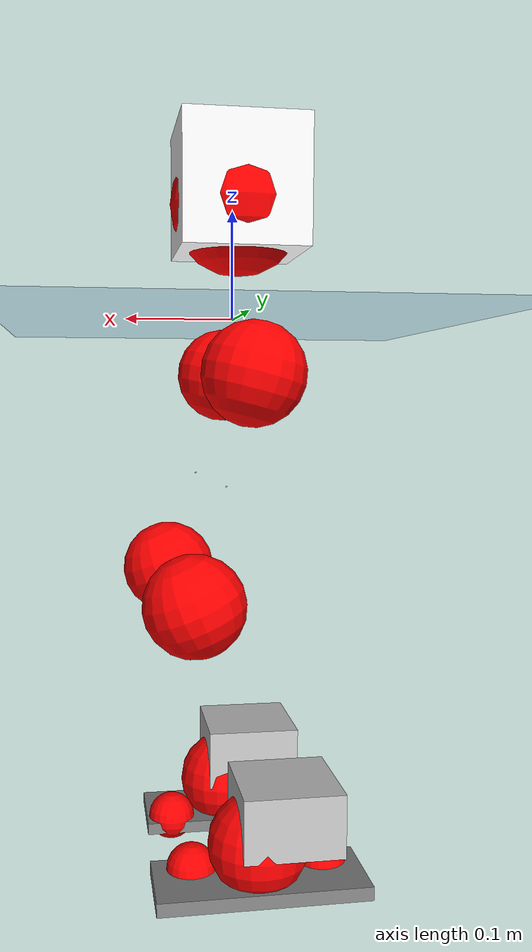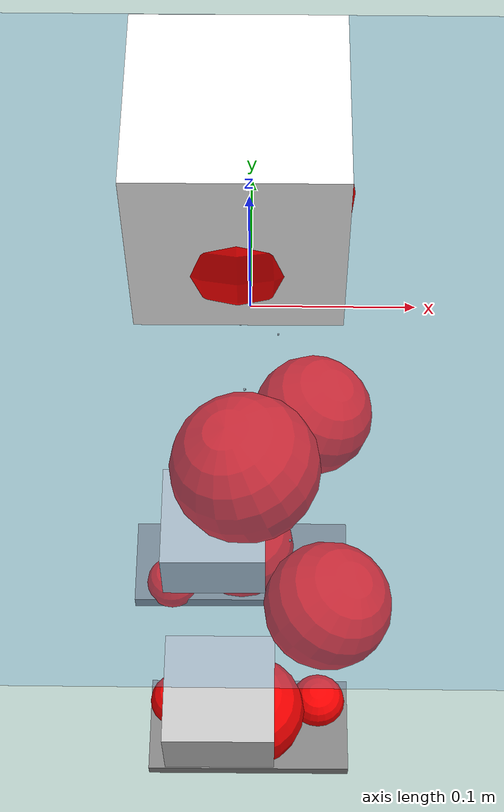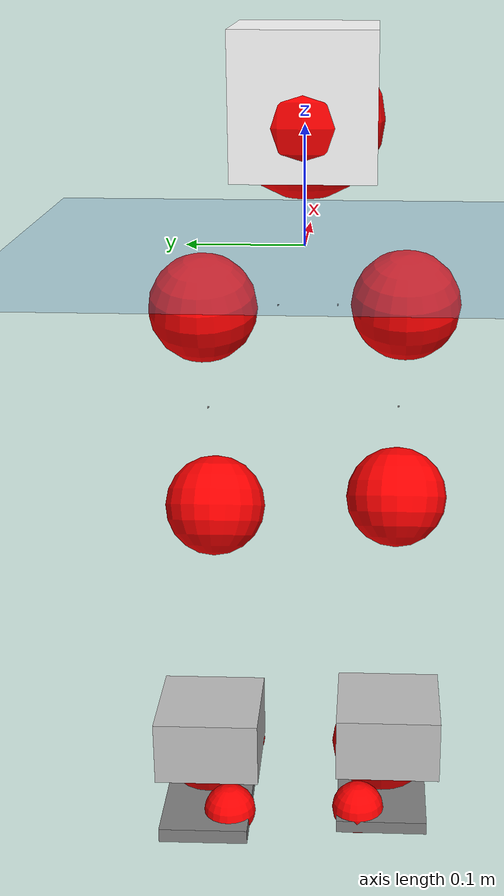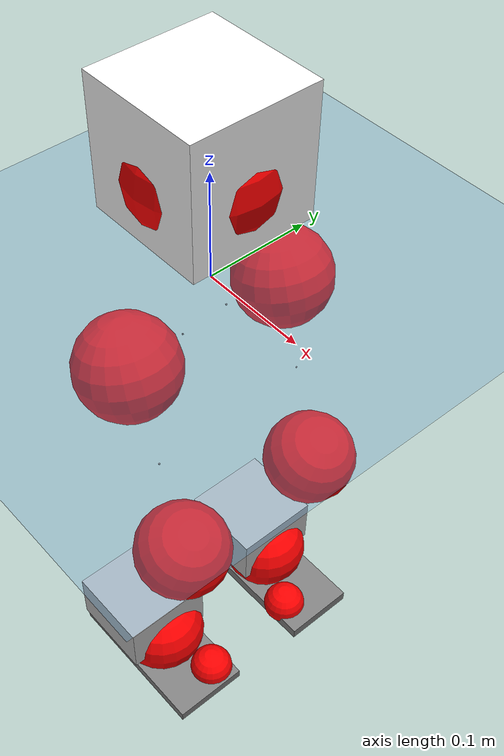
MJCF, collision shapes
<mujoco model="pi_12dof_release_v1">
  <compiler angle="radian" assetdir="assets" balanceinertia="true" inertiafromgeom="false"/>

  <option timestep="0.005" density="1.2" viscosity="2e-05"/>

  <size nkey="1"/>

  <visual>
    <quality shadowsize="8192"/>
    <map shadowclip="0.5"/>
  </visual>

  <default>
    <default class="/">
      <joint armature="0.01" damping="0.01" frictionloss="0.01"/>
      <geom contype="0" conaffinity="0" group="1" solref="-1000 -80"/>
      <site size="0.01 0.005 0.005" group="5"/>
      <general forcelimited="true" biastype="affine" gainprm="20" biasprm="0 -20 -0.5"/>
      <default class="foot">
        <geom size="0.0845 0.036 0.005" type="box" condim="6" group="4" priority="1" friction="0.9 0.2 0.2" solimp="0.015 1 0.005"/>
      </default>
      <default class="reward_collision_sphere">
        <geom group="5" rgba="1 0 0 1"/>
      </default>
    </default>
  </default>

  <asset>
    <texture type="skybox" colorspace="auto" name="//unnamed_texture_0" builtin="gradient" rgb1="0.95 0.95 0.95" rgb2="0.95 0.95 0.95" width="100" height="600"/>
    <texture type="2d" colorspace="auto" name="texplane" builtin="checker" rgb1="0.345 0.575 0.748" rgb2="0.345 0.575 0.748" markrgb="1 1 1" width="512" height="512"/>
    <material name="MatPlane" class="/" texture="texplane" texuniform="true" texrepeat="2 2" specular="0.9"/>
    <mesh name="baselink_1" class="/" file="baselink_1.STL"/>
    <mesh name="r_hip_pitch_link" class="/" file="r_hip_pitch_link.STL"/>
    <mesh name="r_hip_roll_link" class="/" file="r_hip_roll_link.STL"/>
    <mesh name="r_thigh_link" class="/" file="r_thigh_link.STL"/>
    <mesh name="r_calf_link" class="/" file="r_calf_link.STL"/>
    <mesh name="r_ankle_pitch_link" class="/" file="r_ankle_pitch_link.STL"/>
    <mesh name="r_ankle_roll_link" class="/" file="r_ankle_roll_link.STL"/>
    <mesh name="l_hip_pitch_link" class="/" file="l_hip_pitch_link.STL"/>
    <mesh name="l_hip_roll_link" class="/" file="l_hip_roll_link.STL"/>
    <mesh name="l_thigh_link" class="/" file="l_thigh_link.STL"/>
    <mesh name="l_calf_link" class="/" file="l_calf_link.STL"/>
    <mesh name="l_ankle_pitch_link" class="/" file="l_ankle_pitch_link.STL"/>
    <mesh name="l_ankle_roll_link" class="/" file="l_ankle_roll_link.STL"/>
  </asset>

  <worldbody>
    <geom name="floor" class="/" size="100 100 0.125" type="plane" group="0" material="MatPlane"/>
    <light name="toplight_shadow" class="/" pos="0 0 5" dir="0.0990148 0.0990148 -0.990148" type="directional" ambient="0.04 0.04 0.04" diffuse="0.55 0.55 0.55" specular="0.12 0.12 0.12"/>
    <light name="toplight_fill" class="/" pos="0 0 5" dir="0.0990148 0.0990148 -0.990148" type="directional" castshadow="false" ambient="0.04 0.04 0.04" diffuse="0.3 0.3 0.3" specular="0.08 0.08 0.08"/>
    <body name="trunk" pos="-0.00535368 -0.00126988 -0.00106867" quat="0.999998 -0.000525396 -0.00169516 0.000942648">
      <inertial pos="0.00689994 0.000980854 0.0588611" quat="0.690106 0.0192905 0.0126646 0.72334" mass="3.7101" diaginertia="0.006161 0.012908 0.0341132"/>
      <joint name="//unnamed_joint_0" type="free"/>
      <geom name="//unnamed_geom_1" class="/" type="mesh" density="0" rgba="1 1 1 1" mesh="baselink_1"/>
      <geom name="//unnamed_geom_2" class="/" size="0.0581578 0.0581578 0.0581578" pos="0 0 0.120813" type="box" rgba="1 1 1 1"/>
      <geom name="//unnamed_geom_3" class="reward_collision_sphere" size="0.0639736" pos="0 0 0.105712"/>
      <site name="imu" class="/" pos="-0.00750433 0.00216663 -0.0180839" size="0.0116316"/>
      <camera name="track" class="/" pos="0 -2.14285 0" quat="0.707107 0.707107 0 0" mode="trackcom"/>
      <camera name="ego_camera" class="/" pos="0.0680908 0 0.27183" quat="-0.5 -0.5 0.5 0.5"/>
      <body name="r_hip_pitch_link" pos="0.00177038 -0.0265424 -0.0483258" quat="0.992262 3.32806e-05 -0.124165 0.000243796">
        <inertial pos="0.00361706 -0.0580061 -0.00153741" quat="-0.0183221 0.704819 -0.019609 0.708879" mass="0.592502" diaginertia="6.43584e-05 0.000144013 0.000651894"/>
        <joint name="r_hip_pitch_joint" class="/" pos="0 0 0" axis="0.000898937 -0.999989 -0.00469967" range="-1.76597 1.29175" armature="0.010356" damping="0" frictionloss="0.0107737"/>
        <geom name="//unnamed_geom_4" class="/" type="mesh" density="0" rgba="0.75294 0.75294 0.75294 1" mesh="r_hip_pitch_link"/>
        <geom name="//unnamed_geom_5" class="/" size="0.000581578 0.000581578 0.000581578" type="box" rgba="0.75294 0.75294 0.75294 1"/>
        <body name="r_hip_roll_link" pos="0.00105398 -0.0575746 2.85594e-05" quat="0.999999 -0.00099065 -0.000762316 0.000619804">
          <inertial pos="-0.00267782 0.000760128 -0.0880497" quat="0.706301 -0.0789333 -0.0827727 0.698611" mass="0.613798" diaginertia="0.000212026 0.000406135 0.000952451"/>
          <joint name="r_hip_roll_joint" class="/" pos="0 0 0" axis="-0.999972 0.0057547 -0.00487598" stiffness="0.00737531" range="-0.165998 0.522078" armature="0.0106877" damping="0.0274437" frictionloss="0.010146"/>
          <geom name="//unnamed_geom_6" class="/" type="mesh" density="0" rgba="0.75294 0.75294 0.75294 1" mesh="r_hip_roll_link"/>
          <geom name="//unnamed_geom_7" class="/" size="0.000581578 0.000581578 0.000581578" type="box" rgba="0.75294 0.75294 0.75294 1"/>
          <geom name="//unnamed_geom_8" class="reward_collision_sphere" size="0.0465262"/>
          <body name="r_thigh_link" pos="0.00307319 0.00402948 -0.104021" quat="1 2.81971e-05 3.33905e-05 -0.000132229">
            <inertial pos="0.00244014 0.00217173 -0.0725484" quat="0.737238 0.675578 -0.00162378 0.00848304" mass="0.176029" diaginertia="7.15755e-05 0.000123438 0.000434712"/>
            <joint name="r_thigh_joint" class="/" pos="0 0 0" axis="0.000629679 -0.00426188 -0.999991" range="-0.26009 0.59279" armature="0.0115646" damping="0.0158646" frictionloss="0.014789"/>
            <geom name="//unnamed_geom_9" class="/" type="mesh" density="0" rgba="0.75294 0.75294 0.75294 1" mesh="r_thigh_link"/>
            <geom name="//unnamed_geom_10" class="/" size="0.000581578 0.000581578 0.000581578" type="box" rgba="0.75294 0.75294 0.75294 1"/>
            <body name="r_calf_link" pos="0.003245 -0.000298747 -0.102018" quat="0.947374 -2.10396e-05 0.320129 -0.000389343">
              <inertial pos="0.000249164 0.00203062 -0.104358" quat="0.999861 -0.0149412 0.00536808 0.00516209" mass="1.29631" diaginertia="0.00220725 0.00492881 0.0013748"/>
              <joint name="r_calf_joint" class="/" pos="0 0 0" axis="0.0132581 -0.999904 0.00391967" stiffness="0.0149288" range="-1.74779 0.610681" armature="0.0102595" damping="0.0214092" frictionloss="0.0106468"/>
              <geom name="//unnamed_geom_11" class="/" type="mesh" density="0" rgba="0.75294 0.75294 0.75294 1" mesh="r_calf_link"/>
              <geom name="//unnamed_geom_12" class="/" size="0.000581578 0.000581578 0.000581578" type="box" rgba="0.75294 0.75294 0.75294 1"/>
              <geom name="//unnamed_geom_13" class="reward_collision_sphere" size="0.0465262"/>
              <body name="r_ankle_pitch_link" pos="-0.000550493 0.00514794 -0.211224" quat="0.980022 -0.000163406 -0.198889 -1.36681e-05">
                <inertial pos="0.00459343 0.00547998 -0.00198264" quat="0.000943102 0.70821 -0.000230292 0.706002" mass="0.272566" diaginertia="0.000183621 0.000301034 0.000899894"/>
                <joint name="r_ankle_pitch_joint" class="/" pos="0 0 0" axis="-0.00704087 -0.999779 -0.0198075" range="-1.2733 0.51345" armature="0.0122776" damping="0.0105442" frictionloss="0.0117644"/>
                <geom name="//unnamed_geom_14" class="/" type="mesh" density="0" rgba="0.75294 0.75294 0.75294 1" mesh="r_ankle_pitch_link"/>
                <geom name="//unnamed_geom_15" class="/" size="0.0453631 0.0465262 0.0290789" type="box" rgba="0.75294 0.75294 0.75294 1"/>
                <body name="r_ankle_roll_link" pos="0.0698611 0.00509697 -0.00172018" quat="1 0.000380791 0.00012842 0.000168667">
                  <inertial pos="-0.0204388 0.00150726 -0.0223533" quat="0.55127 0.44541 0.432442 0.55741" mass="0.813766" diaginertia="0.00070125 0.0014656 0.00227241"/>
                  <joint name="r_ankle_roll_joint" class="/" pos="0 0 0" axis="-0.999722 0.003853 -0.023274" range="-0.073085 0.177751" armature="0.00945733" damping="0" frictionloss="0.012069"/>
                  <geom name="//unnamed_geom_16" class="/" type="mesh" density="0" rgba="0.75294 0.75294 0.75294 1" mesh="r_ankle_roll_link"/>
                  <geom name="//unnamed_geom_17" class="/" type="mesh" rgba="0.75294 0.75294 0.75294 1" mesh="r_ankle_roll_link"/>
                  <geom name="right_foot" class="foot" size="0.0853101 0.0404933 0.0056753" pos="-0.0463017 0 -0.0664473"/>
                  <geom name="//unnamed_geom_19" class="reward_collision_sphere" size="0.0465262" pos="-0.0453938 0 -0.0302033"/>
                  <geom name="//unnamed_geom_20" class="reward_collision_sphere" size="0.0232631" pos="0.0136182 0.0214285 -0.0604066"/>
                  <geom name="//unnamed_geom_21" class="reward_collision_sphere" size="0.0232631" pos="-0.108945 0.0214285 -0.0604066"/>
                  <site name="right_foot" class="foot" pos="-0.0463017 0 -0.0664473" size="0.0116316"/>
                </body>
              </body>
            </body>
          </body>
        </body>
      </body>
      <body name="l_hip_pitch_link" pos="-0.00163423 0.0238264 -0.0480826" quat="0.992206 -6.73508e-05 -0.124609 -7.74304e-05">
        <inertial pos="0.00258242 0.0537188 0.00110131" quat="-0.0341214 0.686565 0.0214772 0.725949" mass="0.598817" diaginertia="8.33007e-05 0.000153006 0.000778153"/>
        <joint name="l_hip_pitch_joint" class="/" pos="0 0 0" axis="-0.0227016 0.99967 0.0120385" range="-1.20526 1.73981" armature="0.0120443" damping="0.0164451" frictionloss="0.0112777"/>
        <geom name="//unnamed_geom_22" class="/" type="mesh" density="0" rgba="0.75294 0.75294 0.75294 1" mesh="l_hip_pitch_link"/>
        <geom name="//unnamed_geom_23" class="/" size="0.000581578 0.000581578 0.000581578" type="box" rgba="0.75294 0.75294 0.75294 1"/>
        <body name="l_hip_roll_link" pos="-7.39561e-05 0.0637723 -0.00326153" quat="0.999999 0.000403405 0.000351591 0.000870611">
          <inertial pos="-0.00208976 -0.000240731 -0.0894732" quat="0.705842 -0.072296 -0.0748938 0.700679" mass="0.593882" diaginertia="0.000213402 0.000415908 0.00103207"/>
          <joint name="l_hip_roll_joint" class="/" pos="0 0 0" axis="-0.999932 0.00649602 -0.00973633" stiffness="0.0294941" range="-0.544074 0.0752606" armature="0.0107108" damping="0.00640735" frictionloss="0.0104571"/>
          <geom name="//unnamed_geom_24" class="/" type="mesh" density="0" rgba="0.75294 0.75294 0.75294 1" mesh="l_hip_roll_link"/>
          <geom name="//unnamed_geom_25" class="/" size="0.000581578 0.000581578 0.000581578" type="box" rgba="0.75294 0.75294 0.75294 1"/>
          <geom name="//unnamed_geom_26" class="reward_collision_sphere" size="0.0465262"/>
          <body name="l_thigh_link" pos="-0.000689831 0.000835594 -0.100255" quat="0.999999 -0.00057641 0.0010094 -0.000394743">
            <inertial pos="-0.00173791 -0.00625933 -0.0713931" quat="0.675428 0.73742 0.00142349 -0.00260046" mass="0.182574" diaginertia="7.86874e-05 0.000138841 0.000496636"/>
            <joint name="l_thigh_joint" class="/" pos="0 0 0" axis="0.00714865 0.00769014 -0.999945" range="-0.589373 0.27688" armature="0.0120061" damping="0.0196315" frictionloss="0.0119968"/>
            <geom name="//unnamed_geom_27" class="/" type="mesh" density="0" rgba="0.75294 0.75294 0.75294 1" mesh="l_thigh_link"/>
            <geom name="//unnamed_geom_28" class="/" size="0.000581578 0.000581578 0.000581578" type="box" rgba="0.75294 0.75294 0.75294 1"/>
            <body name="l_calf_link" pos="0.000951043 -0.000766822 -0.108871" quat="0.947649 -0.000744649 0.319307 0.00208919">
              <inertial pos="-0.00446097 0.00241937 -0.100596" quat="0.999976 0.00564371 -0.00349986 0.00178457" mass="1.27666" diaginertia="0.0021631 0.00488269 0.00133336"/>
              <joint name="l_calf_joint" class="/" pos="0 0 0" axis="-0.00147363 0.999999 0.000857633" range="-0.694078 1.65051" armature="0.0128916" damping="0.0100317" frictionloss="0.0132453"/>
              <geom name="//unnamed_geom_29" class="/" type="mesh" density="0" rgba="0.75294 0.75294 0.75294 1" mesh="l_calf_link"/>
              <geom name="//unnamed_geom_30" class="/" size="0.000581578 0.000581578 0.000581578" type="box" rgba="0.75294 0.75294 0.75294 1"/>
              <geom name="//unnamed_geom_31" class="reward_collision_sphere" size="0.0465262"/>
              <body name="l_ankle_pitch_link" pos="-0.00157869 4.70594e-05 -0.206477" quat="0.980051 -0.000169213 -0.198745 -0.000145712">
                <inertial pos="0.00201164 -0.00176953 -0.000204139" quat="-0.000252999 0.707186 -7.29414e-05 0.707028" mass="0.287703" diaginertia="0.000184652 0.000311906 0.000934944"/>
                <joint name="l_ankle_pitch_joint" class="/" pos="0 0 0" axis="-0.000628178 1 -0.00032475" range="-0.509811 1.3444" armature="0.0114765" damping="0" frictionloss="0.0124043"/>
                <geom name="//unnamed_geom_32" class="/" type="mesh" density="0" rgba="0.75294 0.75294 0.75294 1" mesh="l_ankle_pitch_link"/>
                <geom name="//unnamed_geom_33" class="/" size="0.0453631 0.0465262 0.0290789" type="box" rgba="0.75294 0.75294 0.75294 1"/>
                <body name="l_ankle_roll_link" pos="0.07008 0.00141883 0.000261415" quat="1 -0.000741613 0.000319477 0.000432663">
                  <inertial pos="-0.0204806 0.00105048 -0.0220272" quat="0.561512 0.429843 0.434608 0.557724" mass="0.809036" diaginertia="0.00071932 0.00146723 0.00217493"/>
                  <joint name="l_ankle_roll_joint" class="/" pos="0 0 0" axis="-0.999748 0.00398545 -0.0220978" stiffness="0.0150319" range="-0.140306 0.178123" armature="0.0103529" damping="0" frictionloss="0.0106759"/>
                  <geom name="//unnamed_geom_34" class="/" type="mesh" density="0" rgba="0.75294 0.75294 0.75294 1" mesh="l_ankle_roll_link"/>
                  <geom name="//unnamed_geom_35" class="/" type="mesh" rgba="0.75294 0.75294 0.75294 1" mesh="l_ankle_roll_link"/>
                  <geom name="left_foot" class="foot" size="0.096647 0.0394417 0.00641138" pos="-0.0463017 0 -0.0664473"/>
                  <geom name="//unnamed_geom_37" class="reward_collision_sphere" size="0.0465262" pos="-0.0453938 0 -0.0302033"/>
                  <geom name="//unnamed_geom_38" class="reward_collision_sphere" size="0.0232631" pos="0.0136182 -0.0214285 -0.0604066"/>
                  <geom name="//unnamed_geom_39" class="reward_collision_sphere" size="0.0232631" pos="-0.108945 -0.0214285 -0.0604066"/>
                  <site name="left_foot" class="foot" pos="-0.0463017 0 -0.0664473" size="0.0116316"/>
                </body>
              </body>
            </body>
          </body>
        </body>
      </body>
    </body>
  </worldbody>

  <contact>
    <pair class="/" geom1="floor" geom2="right_foot" name="//unnamed_contact_1"/>
    <pair class="/" geom1="floor" geom2="left_foot" name="//unnamed_contact_0"/>
  </contact>

  <actuator>
    <general name="r_hip_pitch_joint" class="/" joint="r_hip_pitch_joint" forcerange="-24.7679 24.7679" gainprm="23.5937" biasprm="0 -23.5937 -0.607163"/>
    <general name="r_hip_roll_joint" class="/" joint="r_hip_roll_joint" forcerange="-24.36 24.36" gainprm="23.5937" biasprm="0 -23.5937 -0.607163"/>
    <general name="r_thigh_joint" class="/" joint="r_thigh_joint" forcerange="-22.4199 22.4199" gainprm="23.5937" biasprm="0 -23.5937 -0.607163"/>
    <general name="r_calf_joint" class="/" joint="r_calf_joint" forcerange="-19.7617 19.7617" gainprm="23.5937" biasprm="0 -23.5937 -0.607163"/>
    <general name="r_ankle_pitch_joint" class="/" joint="r_ankle_pitch_joint" forcerange="-26.6585 26.6585" gainprm="23.5937" biasprm="0 -23.5937 -0.607163"/>
    <general name="r_ankle_roll_joint" class="/" joint="r_ankle_roll_joint" forcerange="-27.7496 27.7496" gainprm="23.5937" biasprm="0 -23.5937 -0.607163"/>
    <general name="l_hip_pitch_joint" class="/" joint="l_hip_pitch_joint" forcerange="-23.819 23.819" gainprm="23.5937" biasprm="0 -23.5937 -0.607163"/>
    <general name="l_hip_roll_joint" class="/" joint="l_hip_roll_joint" forcerange="-23.943 23.943" gainprm="23.5937" biasprm="0 -23.5937 -0.607163"/>
    <general name="l_thigh_joint" class="/" joint="l_thigh_joint" forcerange="-22.5176 22.5176" gainprm="23.5937" biasprm="0 -23.5937 -0.607163"/>
    <general name="l_calf_joint" class="/" joint="l_calf_joint" forcerange="-24.0483 24.0483" gainprm="23.5937" biasprm="0 -23.5937 -0.607163"/>
    <general name="l_ankle_pitch_joint" class="/" joint="l_ankle_pitch_joint" forcerange="-24.9938 24.9938" gainprm="23.5937" biasprm="0 -23.5937 -0.607163"/>
    <general name="l_ankle_roll_joint" class="/" joint="l_ankle_roll_joint" forcerange="-25.0865 25.0865" gainprm="23.5937" biasprm="0 -23.5937 -0.607163"/>
  </actuator>

  <sensor>
    <gyro site="imu" name="imu_angular_velocity"/>
    <velocimeter site="imu" name="imu_linear_velocity"/>
    <framelinvel objtype="site" objname="left_foot" name="left_foot_global_linear_velocity"/>
    <framelinvel objtype="site" objname="right_foot" name="right_foot_global_linear_velocity"/>
  </sensor>

  <keyframe>
    <key name="home" qpos="0 0 0.291 1 0 0 0 0.4 0 0 -0.8 0.4 0 -0.4 0 0 0.8 -0.4 0"/>
  </keyframe>
</mujoco>
